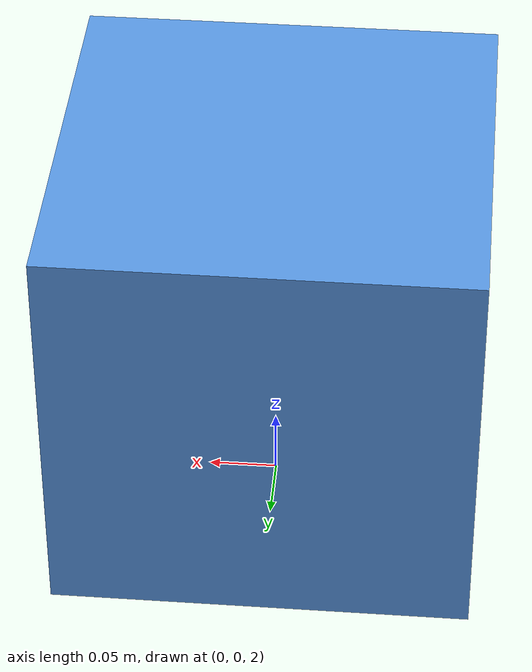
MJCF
<mujoco model="explorer-hull-air">
  <compiler angle="radian" autolimits="true"/>
  <option timestep="0.002" gravity="0 0 -9.81" integrator="implicitfast"/>
  <default>
    <default class="scene"><geom contype="1" conaffinity="1" friction="0.8 0.005 0.0001" rgba="0.6 0.6 0.65 1"/></default>
    <default class="hull"><geom contype="1" conaffinity="1" friction="0.6 0.005 0.0001" rgba="0.35 0.6 0.9 1"/></default>
  </default>
  <worldbody>
    <geom name="floor" class="scene" type="plane" pos="0 0 0" size="5 5 0.1"/>
    <body name="explorer-hull" pos="0 0 2.15" quat="1 0 0 0">
      <freejoint name="explorer-hull-free"/>
      <inertial pos="0 0 0" mass="24.7" diaginertia="0.3705 0.3705 0.3705"/>
      <geom name="explorer-hull-solid" class="hull" type="box" pos="0 0 0" size="0.15 0.15 0.15"/>
    </body>
  </worldbody>
  <sensor>
    <framepos name="hull-pos" objtype="body" objname="explorer-hull"/>
    <framelinvel name="hull-vel" objtype="body" objname="explorer-hull"/>
  </sensor>
</mujoco>
